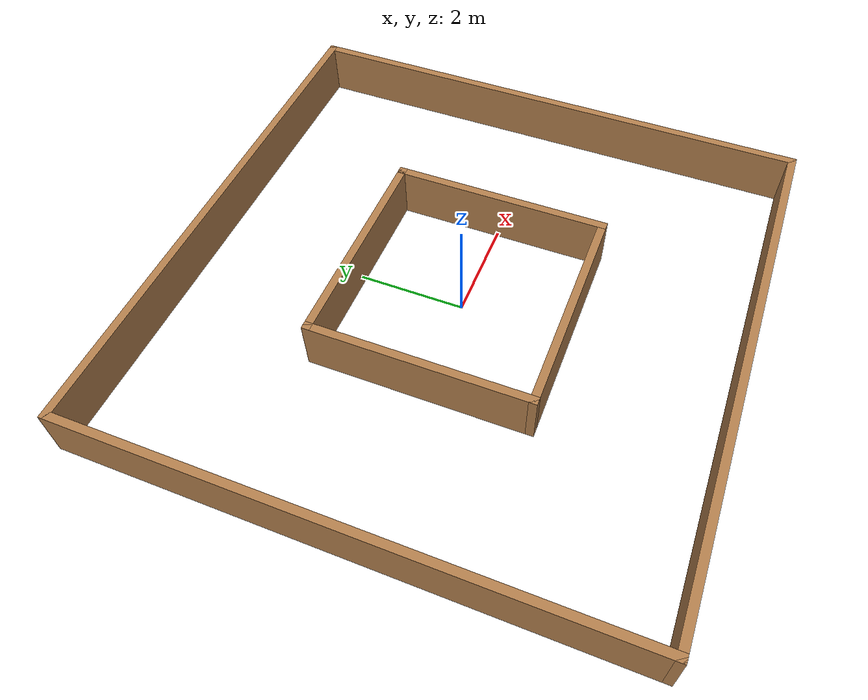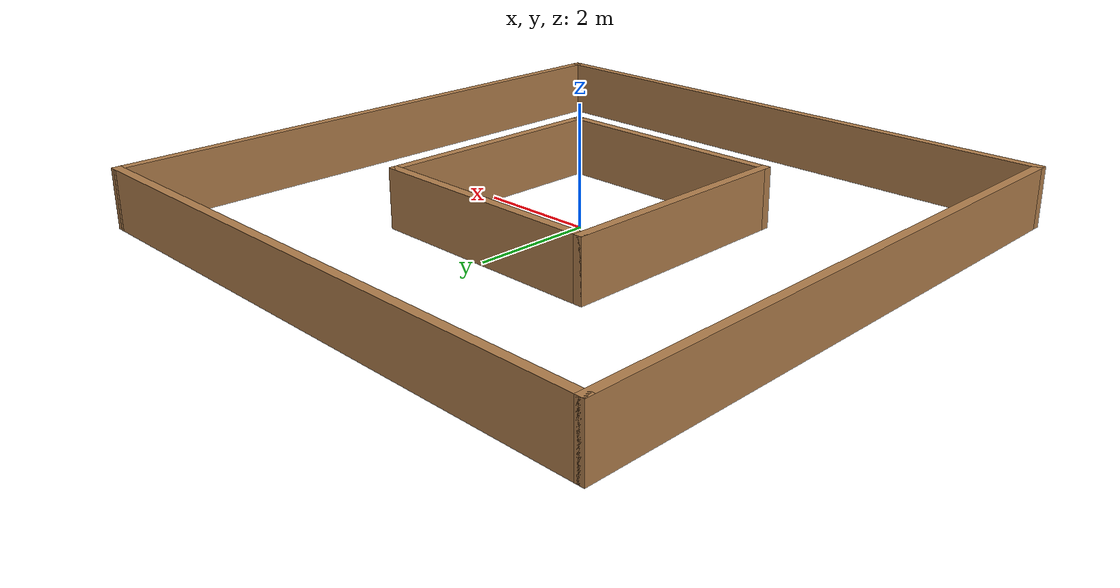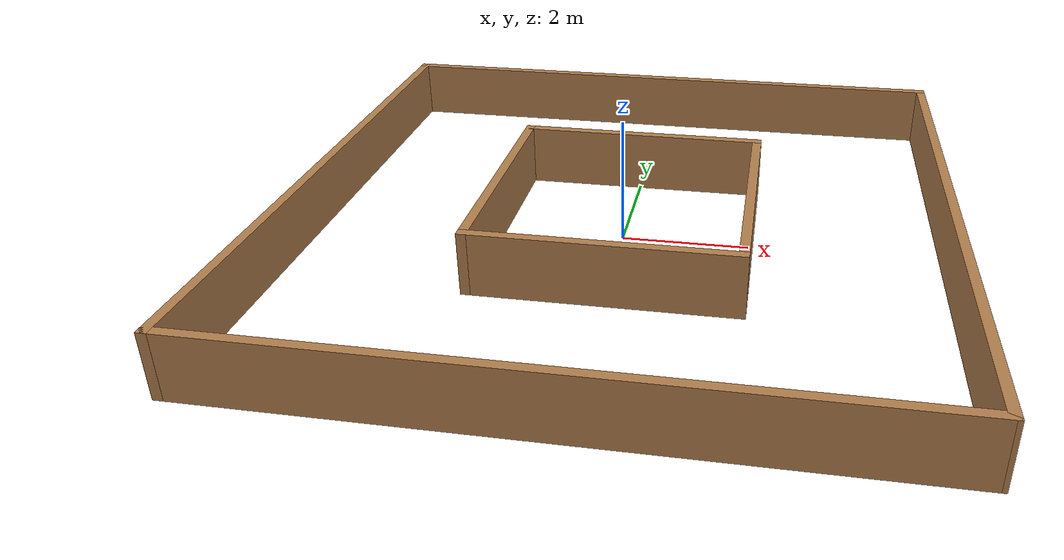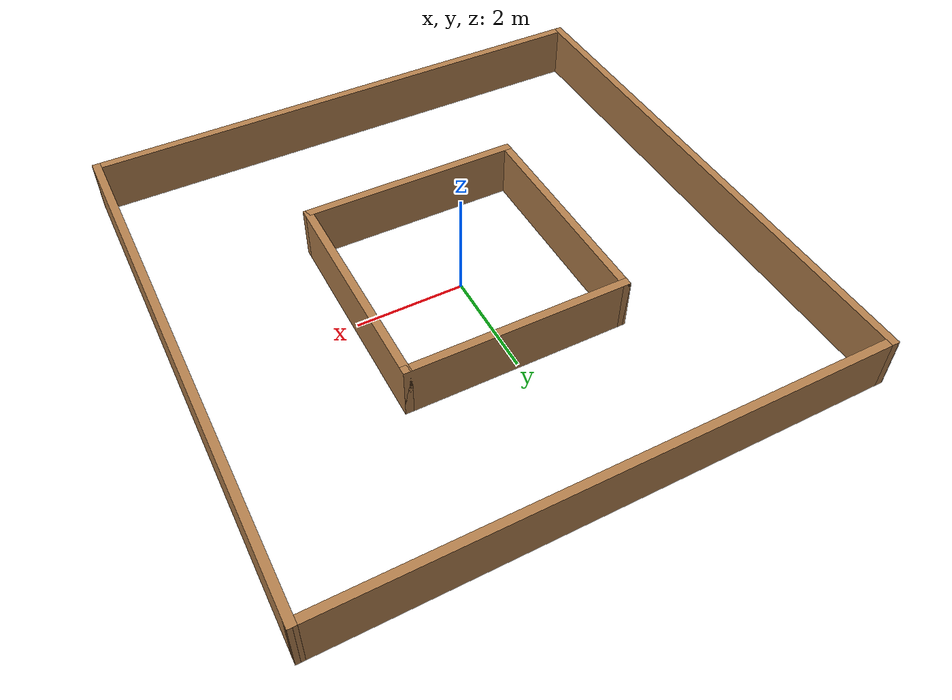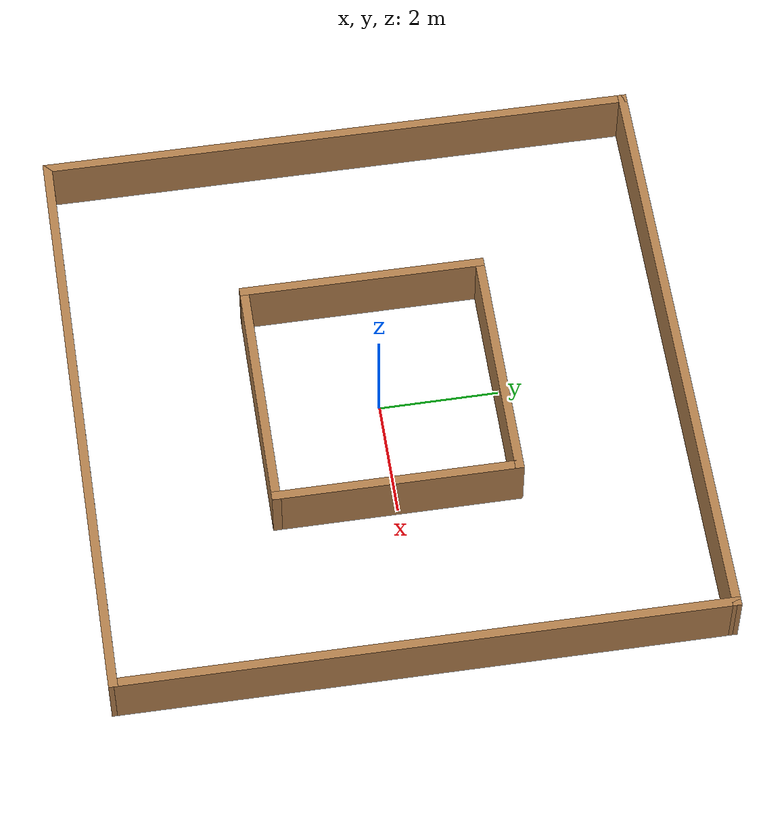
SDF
<?xml version="1.0" ?>
<sdf version="1.4">
  <world name="default">
    <!-- A global light source -->
    <include>
      <uri>model://sun</uri>
    </include>
    <!-- A ground plane -->
    <include>
      <uri>model://simple_room</uri>
    </include>
    <!-- Own physics settings to speed up simulation -->
    <physics type='ode'>
      <max_step_size>0.01</max_step_size>
      <real_time_factor>1</real_time_factor>
      <real_time_update_rate>100</real_time_update_rate>
      <gravity>0 0 -9.8</gravity>
    </physics>
  </world>
</sdf>

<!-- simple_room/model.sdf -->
<sdf version='1.7'>
  <model name='simple_room'>
    <pose>0.011586 0 0 0 -0 0</pose>
    <link name='Wall_0'>
      <collision name='Wall_0_Collision'>
        <geometry>
          <box>
            <size>10.15 0.15 1</size>
          </box>
        </geometry>
        <pose>0 0 0.5 0 -0 0</pose>
      </collision>
      <visual name='Wall_0_Visual'>
        <pose>0 0 0.5 0 -0 0</pose>
        <geometry>
          <box>
            <size>10.15 0.15 1</size>
          </box>
        </geometry>
        <material>
          <script>
            <uri>file://media/materials/scripts/gazebo.material</uri>
            <name>Gazebo/Wood</name>
          </script>
          <ambient>1 1 1 1</ambient>
        </material>
        <meta>
          <layer>0</layer>
        </meta>
      </visual>
      <pose>-5.01159 0 0 0 -0 1.5708</pose>
    </link>
    <link name='Wall_1'>
      <collision name='Wall_1_Collision'>
        <geometry>
          <box>
            <size>10.173 0.15 1</size>
          </box>
        </geometry>
        <pose>0 0 0.5 0 -0 0</pose>
      </collision>
      <visual name='Wall_1_Visual'>
        <pose>0 0 0.5 0 -0 0</pose>
        <geometry>
          <box>
            <size>10.173 0.15 1</size>
          </box>
        </geometry>
        <material>
          <script>
            <uri>file://media/materials/scripts/gazebo.material</uri>
            <name>Gazebo/Wood</name>
          </script>
          <ambient>1 1 1 1</ambient>
        </material>
        <meta>
          <layer>0</layer>
        </meta>
      </visual>
      <pose>-8.6e-05 5 0 0 -0 0</pose>
    </link>
    <link name='Wall_13'>
      <collision name='Wall_13_Collision'>
        <geometry>
          <box>
            <size>4.15 0.15 1</size>
          </box>
        </geometry>
        <pose>0 0 0.5 0 -0 0</pose>
      </collision>
      <visual name='Wall_13_Visual'>
        <pose>0 0 0.5 0 -0 0</pose>
        <geometry>
          <box>
            <size>4.15 0.15 1</size>
          </box>
        </geometry>
        <material>
          <script>
            <uri>file://media/materials/scripts/gazebo.material</uri>
            <name>Gazebo/Wood</name>
          </script>
          <ambient>1 1 1 1</ambient>
        </material>
        <meta>
          <layer>0</layer>
        </meta>
      </visual>
      <pose>-0.011586 2 0 0 -0 0</pose>
    </link>
    <link name='Wall_15'>
      <collision name='Wall_15_Collision'>
        <geometry>
          <box>
            <size>4.15 0.15 1</size>
          </box>
        </geometry>
        <pose>0 0 0.5 0 -0 0</pose>
      </collision>
      <visual name='Wall_15_Visual'>
        <pose>0 0 0.5 0 -0 0</pose>
        <geometry>
          <box>
            <size>4.15 0.15 1</size>
          </box>
        </geometry>
        <material>
          <script>
            <uri>file://media/materials/scripts/gazebo.material</uri>
            <name>Gazebo/Wood</name>
          </script>
          <ambient>1 1 1 1</ambient>
        </material>
        <meta>
          <layer>0</layer>
        </meta>
      </visual>
      <pose>1.98841 0 0 0 -0 -1.5708</pose>
    </link>
    <link name='Wall_16'>
      <collision name='Wall_16_Collision'>
        <geometry>
          <box>
            <size>4.15 0.15 1</size>
          </box>
        </geometry>
        <pose>0 0 0.5 0 -0 0</pose>
      </collision>
      <visual name='Wall_16_Visual'>
        <pose>0 0 0.5 0 -0 0</pose>
        <geometry>
          <box>
            <size>4.15 0.15 1</size>
          </box>
        </geometry>
        <material>
          <script>
            <uri>file://media/materials/scripts/gazebo.material</uri>
            <name>Gazebo/Wood</name>
          </script>
          <ambient>1 1 1 1</ambient>
        </material>
        <meta>
          <layer>0</layer>
        </meta>
      </visual>
      <pose>-0.011586 -2 0 0 -0 3.14159</pose>
    </link>
    <link name='Wall_2'>
      <collision name='Wall_2_Collision'>
        <geometry>
          <box>
            <size>10.15 0.15 1</size>
          </box>
        </geometry>
        <pose>0 0 0.5 0 -0 0</pose>
      </collision>
      <visual name='Wall_2_Visual'>
        <pose>0 0 0.5 0 -0 0</pose>
        <geometry>
          <box>
            <size>10.15 0.15 1</size>
          </box>
        </geometry>
        <material>
          <script>
            <uri>file://media/materials/scripts/gazebo.material</uri>
            <name>Gazebo/Wood</name>
          </script>
          <ambient>1 1 1 1</ambient>
        </material>
        <meta>
          <layer>0</layer>
        </meta>
      </visual>
      <pose>4.99991 0 0 0 -0 -1.5731</pose>
    </link>
    <link name='Wall_4'>
      <collision name='Wall_4_Collision'>
        <geometry>
          <box>
            <size>10.15 0.15 1</size>
          </box>
        </geometry>
        <pose>0 0 0.5 0 -0 0</pose>
      </collision>
      <visual name='Wall_4_Visual'>
        <pose>0 0 0.5 0 -0 0</pose>
        <geometry>
          <box>
            <size>10.15 0.15 1</size>
          </box>
        </geometry>
        <material>
          <script>
            <uri>file://media/materials/scripts/gazebo.material</uri>
            <name>Gazebo/Wood</name>
          </script>
          <ambient>1 1 1 1</ambient>
        </material>
        <meta>
          <layer>0</layer>
        </meta>
      </visual>
      <pose>-0.011586 -5 0 0 -0 3.14159</pose>
    </link>
    <link name='Wall_8'>
      <collision name='Wall_8_Collision'>
        <geometry>
          <box>
            <size>4.15 0.15 1</size>
          </box>
        </geometry>
        <pose>0 0 0.5 0 -0 0</pose>
      </collision>
      <visual name='Wall_8_Visual'>
        <pose>0 0 0.5 0 -0 0</pose>
        <geometry>
          <box>
            <size>4.15 0.15 1</size>
          </box>
        </geometry>
        <material>
          <script>
            <uri>file://media/materials/scripts/gazebo.material</uri>
            <name>Gazebo/Wood</name>
          </script>
          <ambient>1 1 1 1</ambient>
        </material>
        <meta>
          <layer>0</layer>
        </meta>
      </visual>
      <pose>-2.01159 0 0 0 -0 1.5708</pose>
    </link>
    <static>1</static>
  </model>
</sdf>
